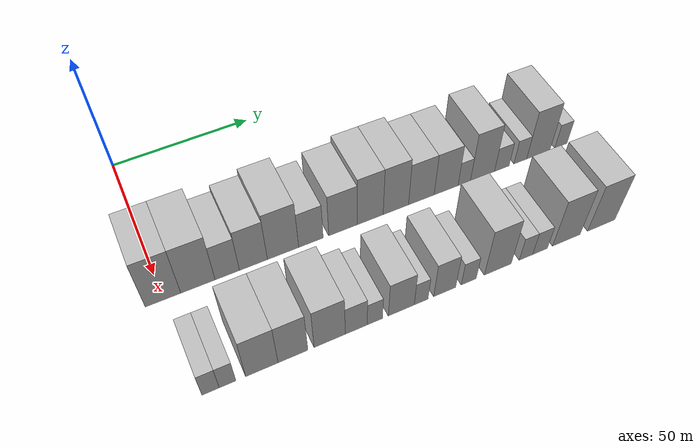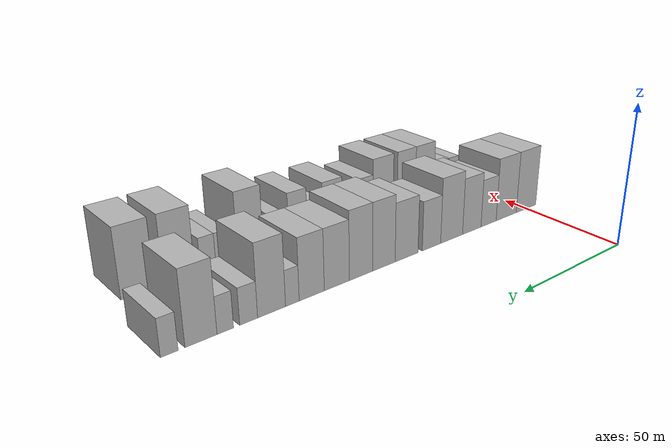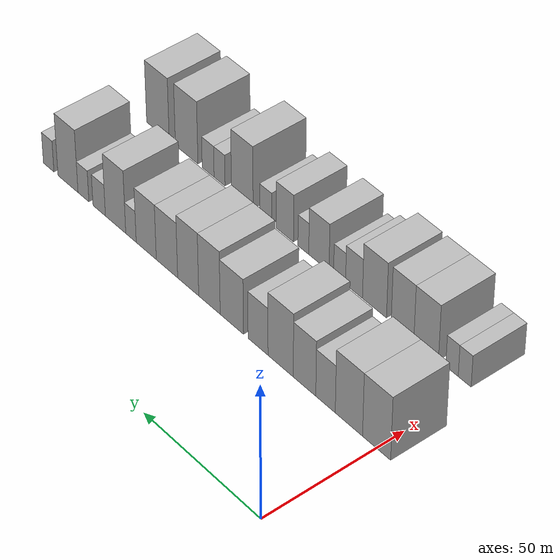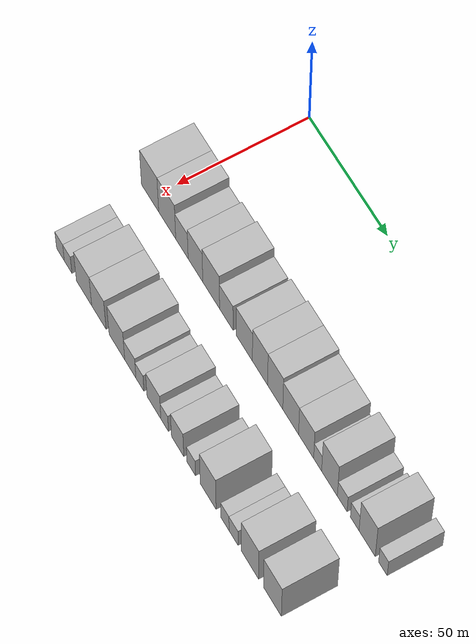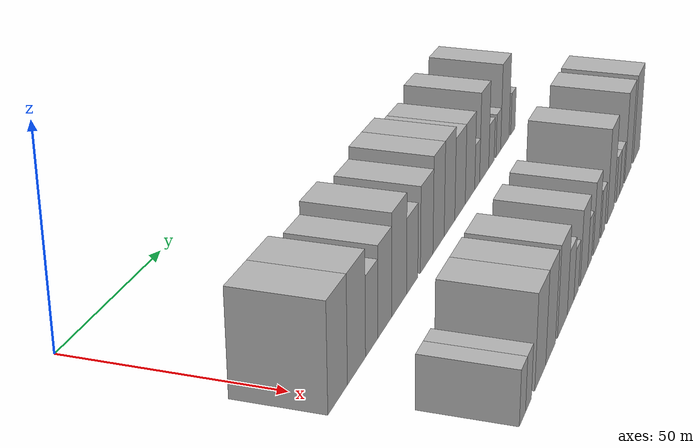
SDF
<sdf version="1.6">
 <world name="default">
  <model name="building_32">
   <static>1</static>
   <pose>50.0000 -0.0336 0 0.000000 0.000000 0.000000</pose>
   <link name="link">
    <pose>0 0 12.00 0 0 0</pose>
    <collision name="collision"><geometry><box><size>20.0000 11.4835 24.0000</size></box></geometry></collision>
    <visual name="visual">
     <cast_shadows>0</cast_shadows>
     <geometry><box><size>20.0000 11.4835 24.0000</size></box></geometry>
     <material>
      <script>
       <uri>model://HANNAS_wall/materials/scripts</uri>
       <uri>model://HANNAS_wall/materials/textures</uri>
       <name>vrc/HANNAS_wall</name>
      </script>
     </material>
    </visual>
   </link>
  </model>
  <model name="building_33">
   <static>1</static>
   <pose>50.0000 11.3672 0 0.000000 0.000000 0.000000</pose>
   <link name="link">
    <pose>0 0 12.00 0 0 0</pose>
    <collision name="collision"><geometry><box><size>20.0000 11.3181 24.0000</size></box></geometry></collision>
    <visual name="visual">
     <cast_shadows>0</cast_shadows>
     <geometry><box><size>20.0000 11.3181 24.0000</size></box></geometry>
     <material>
      <script>
       <uri>model://HANNAS_wall/materials/scripts</uri>
       <uri>model://HANNAS_wall/materials/textures</uri>
       <name>vrc/HANNAS_wall</name>
      </script>
     </material>
    </visual>
   </link>
  </model>
  <model name="building_34">
   <static>1</static>
   <pose>50.0000 21.1201 0 0.000000 0.000000 0.000000</pose>
   <link name="link">
    <pose>0 0 9.00 0 0 0</pose>
    <collision name="collision"><geometry><box><size>20.0000 8.1878 18.0000</size></box></geometry></collision>
    <visual name="visual">
     <cast_shadows>0</cast_shadows>
     <geometry><box><size>20.0000 8.1878 18.0000</size></box></geometry>
     <material>
      <script>
       <uri>model://HANNAS_wall/materials/scripts</uri>
       <uri>model://HANNAS_wall/materials/textures</uri>
       <name>vrc/HANNAS_wall</name>
      </script>
     </material>
    </visual>
   </link>
  </model>
  <model name="building_35">
   <static>1</static>
   <pose>50.0000 30.0102 0 0.000000 0.000000 0.000000</pose>
   <link name="link">
    <pose>0 0 10.50 0 0 0</pose>
    <collision name="collision"><geometry><box><size>20.0000 9.5924 21.0000</size></box></geometry></collision>
    <visual name="visual">
     <cast_shadows>0</cast_shadows>
     <geometry><box><size>20.0000 9.5924 21.0000</size></box></geometry>
     <material>
      <script>
       <uri>model://HANNAS_wall/materials/scripts</uri>
       <uri>model://HANNAS_wall/materials/textures</uri>
       <name>vrc/HANNAS_wall</name>
      </script>
     </material>
    </visual>
   </link>
  </model>
  <model name="building_36">
   <static>1</static>
   <pose>50.0000 40.2652 0 0.000000 0.000000 0.000000</pose>
   <link name="link">
    <pose>0 0 12.00 0 0 0</pose>
    <collision name="collision"><geometry><box><size>20.0000 10.9175 24.0000</size></box></geometry></collision>
    <visual name="visual">
     <cast_shadows>0</cast_shadows>
     <geometry><box><size>20.0000 10.9175 24.0000</size></box></geometry>
     <material>
      <script>
       <uri>model://HANNAS_wall/materials/scripts</uri>
       <uri>model://HANNAS_wall/materials/textures</uri>
       <name>vrc/HANNAS_wall</name>
      </script>
     </material>
    </visual>
   </link>
  </model>
  <model name="building_37">
   <static>1</static>
   <pose>50.0000 50.0913 0 0.000000 0.000000 0.000000</pose>
   <link name="link">
    <pose>0 0 9.00 0 0 0</pose>
    <collision name="collision"><geometry><box><size>20.0000 8.7346 18.0000</size></box></geometry></collision>
    <visual name="visual">
     <cast_shadows>0</cast_shadows>
     <geometry><box><size>20.0000 8.7346 18.0000</size></box></geometry>
     <material>
      <script>
       <uri>model://HANNAS_wall/materials/scripts</uri>
       <uri>model://HANNAS_wall/materials/textures</uri>
       <name>vrc/HANNAS_wall</name>
      </script>
     </material>
    </visual>
   </link>
  </model>
  <model name="building_38">
   <static>1</static>
   <pose>50.0000 61.6384 0 0.000000 0.000000 0.000000</pose>
   <link name="link">
    <pose>0 0 10.50 0 0 0</pose>
    <collision name="collision"><geometry><box><size>20.0000 10.3596 21.0000</size></box></geometry></collision>
    <visual name="visual">
     <cast_shadows>0</cast_shadows>
     <geometry><box><size>20.0000 10.3596 21.0000</size></box></geometry>
     <material>
      <script>
       <uri>model://HANNAS_wall/materials/scripts</uri>
       <uri>model://HANNAS_wall/materials/textures</uri>
       <name>vrc/HANNAS_wall</name>
      </script>
     </material>
    </visual>
   </link>
  </model>
  <model name="building_39">
   <static>1</static>
   <pose>50.0000 71.6569 0 0.000000 0.000000 0.000000</pose>
   <link name="link">
    <pose>0 0 12.00 0 0 0</pose>
    <collision name="collision"><geometry><box><size>20.0000 9.6773 24.0000</size></box></geometry></collision>
    <visual name="visual">
     <cast_shadows>0</cast_shadows>
     <geometry><box><size>20.0000 9.6773 24.0000</size></box></geometry>
     <material>
      <script>
       <uri>model://HANNAS_wall/materials/scripts</uri>
       <uri>model://HANNAS_wall/materials/textures</uri>
       <name>vrc/HANNAS_wall</name>
      </script>
     </material>
    </visual>
   </link>
  </model>
  <model name="building_40">
   <static>1</static>
   <pose>50.0000 81.2991 0 0.000000 0.000000 0.000000</pose>
   <link name="link">
    <pose>0 0 12.00 0 0 0</pose>
    <collision name="collision"><geometry><box><size>20.0000 9.6071 24.0000</size></box></geometry></collision>
    <visual name="visual">
     <cast_shadows>0</cast_shadows>
     <geometry><box><size>20.0000 9.6071 24.0000</size></box></geometry>
     <material>
      <script>
       <uri>model://HANNAS_wall/materials/scripts</uri>
       <uri>model://HANNAS_wall/materials/textures</uri>
       <name>vrc/HANNAS_wall</name>
      </script>
     </material>
    </visual>
   </link>
  </model>
  <model name="building_41">
   <static>1</static>
   <pose>50.0000 91.0452 0 0.000000 0.000000 0.000000</pose>
   <link name="link">
    <pose>0 0 10.50 0 0 0</pose>
    <collision name="collision"><geometry><box><size>20.0000 9.8851 21.0000</size></box></geometry></collision>
    <visual name="visual">
     <cast_shadows>0</cast_shadows>
     <geometry><box><size>20.0000 9.8851 21.0000</size></box></geometry>
     <material>
      <script>
       <uri>model://HANNAS_wall/materials/scripts</uri>
       <uri>model://HANNAS_wall/materials/textures</uri>
       <name>vrc/HANNAS_wall</name>
      </script>
     </material>
    </visual>
   </link>
  </model>
  <model name="building_42">
   <static>1</static>
   <pose>50.0000 100.6910 0 0.000000 0.000000 0.000000</pose>
   <link name="link">
    <pose>0 0 10.50 0 0 0</pose>
    <collision name="collision"><geometry><box><size>20.0000 9.4066 21.0000</size></box></geometry></collision>
    <visual name="visual">
     <cast_shadows>0</cast_shadows>
     <geometry><box><size>20.0000 9.4066 21.0000</size></box></geometry>
     <material>
      <script>
       <uri>model://HANNAS_wall/materials/scripts</uri>
       <uri>model://HANNAS_wall/materials/textures</uri>
       <name>vrc/HANNAS_wall</name>
      </script>
     </material>
    </visual>
   </link>
  </model>
  <model name="building_43">
   <static>1</static>
   <pose>50.0000 107.8658 0 0.000000 0.000000 0.000000</pose>
   <link name="link">
    <pose>0 0 6.00 0 0 0</pose>
    <collision name="collision"><geometry><box><size>20.0000 4.9430 12.0000</size></box></geometry></collision>
    <visual name="visual">
     <cast_shadows>0</cast_shadows>
     <geometry><box><size>20.0000 4.9430 12.0000</size></box></geometry>
     <material>
      <script>
       <uri>model://HANNAS_wall/materials/scripts</uri>
       <uri>model://HANNAS_wall/materials/textures</uri>
       <name>vrc/HANNAS_wall</name>
      </script>
     </material>
    </visual>
   </link>
  </model>
  <model name="building_44">
   <static>1</static>
   <pose>50.0000 115.1878 0 0.000000 0.000000 0.000000</pose>
   <link name="link">
    <pose>0 0 12.00 0 0 0</pose>
    <collision name="collision"><geometry><box><size>20.0000 9.7011 24.0000</size></box></geometry></collision>
    <visual name="visual">
     <cast_shadows>0</cast_shadows>
     <geometry><box><size>20.0000 9.7011 24.0000</size></box></geometry>
     <material>
      <script>
       <uri>model://HANNAS_wall/materials/scripts</uri>
       <uri>model://HANNAS_wall/materials/textures</uri>
       <name>vrc/HANNAS_wall</name>
      </script>
     </material>
    </visual>
   </link>
  </model>
  <model name="building_45">
   <static>1</static>
   <pose>50.0000 123.0309 0 0.000000 0.000000 0.000000</pose>
   <link name="link">
    <pose>0 0 6.00 0 0 0</pose>
    <collision name="collision"><geometry><box><size>20.0000 5.9852 12.0000</size></box></geometry></collision>
    <visual name="visual">
     <cast_shadows>0</cast_shadows>
     <geometry><box><size>20.0000 5.9852 12.0000</size></box></geometry>
     <material>
      <script>
       <uri>model://HANNAS_wall/materials/scripts</uri>
       <uri>model://HANNAS_wall/materials/textures</uri>
       <name>vrc/HANNAS_wall</name>
      </script>
     </material>
    </visual>
   </link>
  </model>
  <model name="building_46">
   <static>1</static>
   <pose>50.0000 130.6669 0 0.000000 0.000000 0.000000</pose>
   <link name="link">
    <pose>0 0 6.00 0 0 0</pose>
    <collision name="collision"><geometry><box><size>20.0000 5.2868 12.0000</size></box></geometry></collision>
    <visual name="visual">
     <cast_shadows>0</cast_shadows>
     <geometry><box><size>20.0000 5.2868 12.0000</size></box></geometry>
     <material>
      <script>
       <uri>model://HANNAS_wall/materials/scripts</uri>
       <uri>model://HANNAS_wall/materials/textures</uri>
       <name>vrc/HANNAS_wall</name>
      </script>
     </material>
    </visual>
   </link>
  </model>
  <model name="building_47">
   <static>1</static>
   <pose>50.0000 138.2354 0 0.000000 0.000000 0.000000</pose>
   <link name="link">
    <pose>0 0 12.00 0 0 0</pose>
    <collision name="collision"><geometry><box><size>20.0000 9.8501 24.0000</size></box></geometry></collision>
    <visual name="visual">
     <cast_shadows>0</cast_shadows>
     <geometry><box><size>20.0000 9.8501 24.0000</size></box></geometry>
     <material>
      <script>
       <uri>model://HANNAS_wall/materials/scripts</uri>
       <uri>model://HANNAS_wall/materials/textures</uri>
       <name>vrc/HANNAS_wall</name>
      </script>
     </material>
    </visual>
   </link>
  </model>
  <model name="building_48">
   <static>1</static>
   <pose>50.0000 147.7695 0 0.000000 0.000000 0.000000</pose>
   <link name="link">
    <pose>0 0 6.00 0 0 0</pose>
    <collision name="collision"><geometry><box><size>20.0000 5.2181 12.0000</size></box></geometry></collision>
    <visual name="visual">
     <cast_shadows>0</cast_shadows>
     <geometry><box><size>20.0000 5.2181 12.0000</size></box></geometry>
     <material>
      <script>
       <uri>model://HANNAS_wall/materials/scripts</uri>
       <uri>model://HANNAS_wall/materials/textures</uri>
       <name>vrc/HANNAS_wall</name>
      </script>
     </material>
    </visual>
   </link>
  </model>
  <model name="building_102">
   <static>1</static>
   <pose>85.0000 3.4648 0 0.000000 0.000000 0.000000</pose>
   <link name="link">
    <pose>0 0 6.00 0 0 0</pose>
    <collision name="collision"><geometry><box><size>20.0000 5.2595 12.0000</size></box></geometry></collision>
    <visual name="visual">
     <cast_shadows>0</cast_shadows>
     <geometry><box><size>20.0000 5.2595 12.0000</size></box></geometry>
     <material>
      <script>
       <uri>model://HANNAS_wall/materials/scripts</uri>
       <uri>model://HANNAS_wall/materials/textures</uri>
       <name>vrc/HANNAS_wall</name>
      </script>
     </material>
    </visual>
   </link>
  </model>
  <model name="building_103">
   <static>1</static>
   <pose>85.0000 8.6516 0 0.000000 0.000000 0.000000</pose>
   <link name="link">
    <pose>0 0 6.00 0 0 0</pose>
    <collision name="collision"><geometry><box><size>20.0000 5.1143 12.0000</size></box></geometry></collision>
    <visual name="visual">
     <cast_shadows>0</cast_shadows>
     <geometry><box><size>20.0000 5.1143 12.0000</size></box></geometry>
     <material>
      <script>
       <uri>model://HANNAS_wall/materials/scripts</uri>
       <uri>model://HANNAS_wall/materials/textures</uri>
       <name>vrc/HANNAS_wall</name>
      </script>
     </material>
    </visual>
   </link>
  </model>
  <model name="building_104">
   <static>1</static>
   <pose>85.0000 19.3255 0 0.000000 0.000000 0.000000</pose>
   <link name="link">
    <pose>0 0 10.50 0 0 0</pose>
    <collision name="collision"><geometry><box><size>20.0000 10.2333 21.0000</size></box></geometry></collision>
    <visual name="visual">
     <cast_shadows>0</cast_shadows>
     <geometry><box><size>20.0000 10.2333 21.0000</size></box></geometry>
     <material>
      <script>
       <uri>model://HANNAS_wall/materials/scripts</uri>
       <uri>model://HANNAS_wall/materials/textures</uri>
       <name>vrc/HANNAS_wall</name>
      </script>
     </material>
    </visual>
   </link>
  </model>
  <model name="building_105">
   <static>1</static>
   <pose>85.0000 29.2290 0 0.000000 0.000000 0.000000</pose>
   <link name="link">
    <pose>0 0 10.50 0 0 0</pose>
    <collision name="collision"><geometry><box><size>20.0000 9.5737 21.0000</size></box></geometry></collision>
    <visual name="visual">
     <cast_shadows>0</cast_shadows>
     <geometry><box><size>20.0000 9.5737 21.0000</size></box></geometry>
     <material>
      <script>
       <uri>model://HANNAS_wall/materials/scripts</uri>
       <uri>model://HANNAS_wall/materials/textures</uri>
       <name>vrc/HANNAS_wall</name>
      </script>
     </material>
    </visual>
   </link>
  </model>
  <model name="building_106">
   <static>1</static>
   <pose>85.0000 41.1693 0 0.000000 0.000000 0.000000</pose>
   <link name="link">
    <pose>0 0 10.50 0 0 0</pose>
    <collision name="collision"><geometry><box><size>20.0000 10.3070 21.0000</size></box></geometry></collision>
    <visual name="visual">
     <cast_shadows>0</cast_shadows>
     <geometry><box><size>20.0000 10.3070 21.0000</size></box></geometry>
     <material>
      <script>
       <uri>model://HANNAS_wall/materials/scripts</uri>
       <uri>model://HANNAS_wall/materials/textures</uri>
       <name>vrc/HANNAS_wall</name>
      </script>
     </material>
    </visual>
   </link>
  </model>
  <model name="building_107">
   <static>1</static>
   <pose>85.0000 49.9893 0 0.000000 0.000000 0.000000</pose>
   <link name="link">
    <pose>0 0 7.50 0 0 0</pose>
    <collision name="collision"><geometry><box><size>20.0000 7.3329 15.0000</size></box></geometry></collision>
    <visual name="visual">
     <cast_shadows>0</cast_shadows>
     <geometry><box><size>20.0000 7.3329 15.0000</size></box></geometry>
     <material>
      <script>
       <uri>model://HANNAS_wall/materials/scripts</uri>
       <uri>model://HANNAS_wall/materials/textures</uri>
       <name>vrc/HANNAS_wall</name>
      </script>
     </material>
    </visual>
   </link>
  </model>
  <model name="building_108">
   <static>1</static>
   <pose>85.0000 56.2641 0 0.000000 0.000000 0.000000</pose>
   <link name="link">
    <pose>0 0 6.00 0 0 0</pose>
    <collision name="collision"><geometry><box><size>20.0000 5.2167 12.0000</size></box></geometry></collision>
    <visual name="visual">
     <cast_shadows>0</cast_shadows>
     <geometry><box><size>20.0000 5.2167 12.0000</size></box></geometry>
     <material>
      <script>
       <uri>model://HANNAS_wall/materials/scripts</uri>
       <uri>model://HANNAS_wall/materials/textures</uri>
       <name>vrc/HANNAS_wall</name>
      </script>
     </material>
    </visual>
   </link>
  </model>
  <model name="building_109">
   <static>1</static>
   <pose>85.0000 65.3634 0 0.000000 0.000000 0.000000</pose>
   <link name="link">
    <pose>0 0 9.00 0 0 0</pose>
    <collision name="collision"><geometry><box><size>20.0000 8.9821 18.0000</size></box></geometry></collision>
    <visual name="visual">
     <cast_shadows>0</cast_shadows>
     <geometry><box><size>20.0000 8.9821 18.0000</size></box></geometry>
     <material>
      <script>
       <uri>model://HANNAS_wall/materials/scripts</uri>
       <uri>model://HANNAS_wall/materials/textures</uri>
       <name>vrc/HANNAS_wall</name>
      </script>
     </material>
    </visual>
   </link>
  </model>
  <model name="building_110">
   <static>1</static>
   <pose>85.0000 72.2839 0 0.000000 0.000000 0.000000</pose>
   <link name="link">
    <pose>0 0 6.00 0 0 0</pose>
    <collision name="collision"><geometry><box><size>20.0000 4.8587 12.0000</size></box></geometry></collision>
    <visual name="visual">
     <cast_shadows>0</cast_shadows>
     <geometry><box><size>20.0000 4.8587 12.0000</size></box></geometry>
     <material>
      <script>
       <uri>model://HANNAS_wall/materials/scripts</uri>
       <uri>model://HANNAS_wall/materials/textures</uri>
       <name>vrc/HANNAS_wall</name>
      </script>
     </material>
    </visual>
   </link>
  </model>
  <model name="building_111">
   <static>1</static>
   <pose>85.0000 80.6557 0 0.000000 0.000000 0.000000</pose>
   <link name="link">
    <pose>0 0 9.00 0 0 0</pose>
    <collision name="collision"><geometry><box><size>20.0000 7.8850 18.0000</size></box></geometry></collision>
    <visual name="visual">
     <cast_shadows>0</cast_shadows>
     <geometry><box><size>20.0000 7.8850 18.0000</size></box></geometry>
     <material>
      <script>
       <uri>model://HANNAS_wall/materials/scripts</uri>
       <uri>model://HANNAS_wall/materials/textures</uri>
       <name>vrc/HANNAS_wall</name>
      </script>
     </material>
    </visual>
   </link>
  </model>
  <model name="building_112">
   <static>1</static>
   <pose>85.0000 89.3356 0 0.000000 0.000000 0.000000</pose>
   <link name="link">
    <pose>0 0 6.00 0 0 0</pose>
    <collision name="collision"><geometry><box><size>20.0000 5.4748 12.0000</size></box></geometry></collision>
    <visual name="visual">
     <cast_shadows>0</cast_shadows>
     <geometry><box><size>20.0000 5.4748 12.0000</size></box></geometry>
     <material>
      <script>
       <uri>model://HANNAS_wall/materials/scripts</uri>
       <uri>model://HANNAS_wall/materials/textures</uri>
       <name>vrc/HANNAS_wall</name>
      </script>
     </material>
    </visual>
   </link>
  </model>
  <model name="building_113">
   <static>1</static>
   <pose>85.0000 100.0873 0 0.000000 0.000000 0.000000</pose>
   <link name="link">
    <pose>0 0 12.00 0 0 0</pose>
    <collision name="collision"><geometry><box><size>20.0000 10.0287 24.0000</size></box></geometry></collision>
    <visual name="visual">
     <cast_shadows>0</cast_shadows>
     <geometry><box><size>20.0000 10.0287 24.0000</size></box></geometry>
     <material>
      <script>
       <uri>model://HANNAS_wall/materials/scripts</uri>
       <uri>model://HANNAS_wall/materials/textures</uri>
       <name>vrc/HANNAS_wall</name>
      </script>
     </material>
    </visual>
   </link>
  </model>
  <model name="building_114">
   <static>1</static>
   <pose>85.0000 110.6780 0 0.000000 0.000000 0.000000</pose>
   <link name="link">
    <pose>0 0 6.00 0 0 0</pose>
    <collision name="collision"><geometry><box><size>20.0000 5.1525 12.0000</size></box></geometry></collision>
    <visual name="visual">
     <cast_shadows>0</cast_shadows>
     <geometry><box><size>20.0000 5.1525 12.0000</size></box></geometry>
     <material>
      <script>
       <uri>model://HANNAS_wall/materials/scripts</uri>
       <uri>model://HANNAS_wall/materials/textures</uri>
       <name>vrc/HANNAS_wall</name>
      </script>
     </material>
    </visual>
   </link>
  </model>
  <model name="building_115">
   <static>1</static>
   <pose>85.0000 116.0721 0 0.000000 0.000000 0.000000</pose>
   <link name="link">
    <pose>0 0 6.00 0 0 0</pose>
    <collision name="collision"><geometry><box><size>20.0000 5.6358 12.0000</size></box></geometry></collision>
    <visual name="visual">
     <cast_shadows>0</cast_shadows>
     <geometry><box><size>20.0000 5.6358 12.0000</size></box></geometry>
     <material>
      <script>
       <uri>model://HANNAS_wall/materials/scripts</uri>
       <uri>model://HANNAS_wall/materials/textures</uri>
       <name>vrc/HANNAS_wall</name>
      </script>
     </material>
    </visual>
   </link>
  </model>
  <model name="building_116">
   <static>1</static>
   <pose>85.0000 126.2900 0 0.000000 0.000000 0.000000</pose>
   <link name="link">
    <pose>0 0 12.00 0 0 0</pose>
    <collision name="collision"><geometry><box><size>20.0000 10.8002 24.0000</size></box></geometry></collision>
    <visual name="visual">
     <cast_shadows>0</cast_shadows>
     <geometry><box><size>20.0000 10.8002 24.0000</size></box></geometry>
     <material>
      <script>
       <uri>model://HANNAS_wall/materials/scripts</uri>
       <uri>model://HANNAS_wall/materials/textures</uri>
       <name>vrc/HANNAS_wall</name>
      </script>
     </material>
    </visual>
   </link>
  </model>
  <model name="building_117">
   <static>1</static>
   <pose>85.0000 140.1771 0 0.000000 0.000000 0.000000</pose>
   <link name="link">
    <pose>0 0 12.00 0 0 0</pose>
    <collision name="collision"><geometry><box><size>20.0000 10.9739 24.0000</size></box></geometry></collision>
    <visual name="visual">
     <cast_shadows>0</cast_shadows>
     <geometry><box><size>20.0000 10.9739 24.0000</size></box></geometry>
     <material>
      <script>
       <uri>model://HANNAS_wall/materials/scripts</uri>
       <uri>model://HANNAS_wall/materials/textures</uri>
       <name>vrc/HANNAS_wall</name>
      </script>
     </material>
    </visual>
   </link>
  </model>
 </world>
</sdf>
